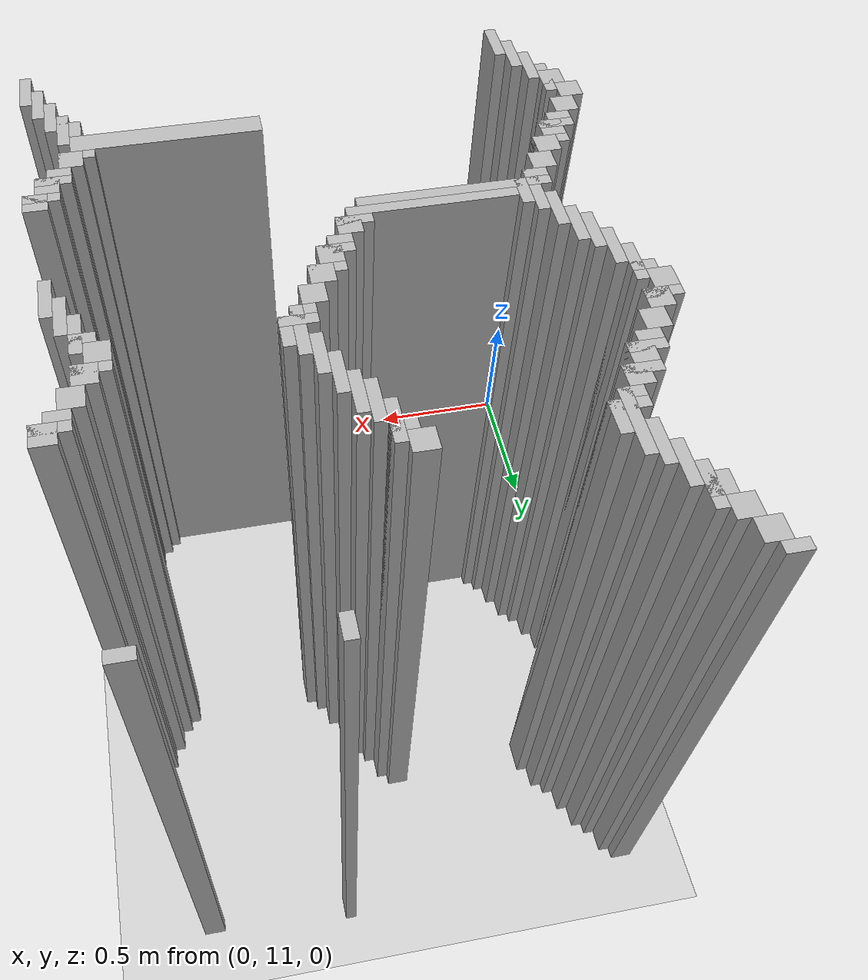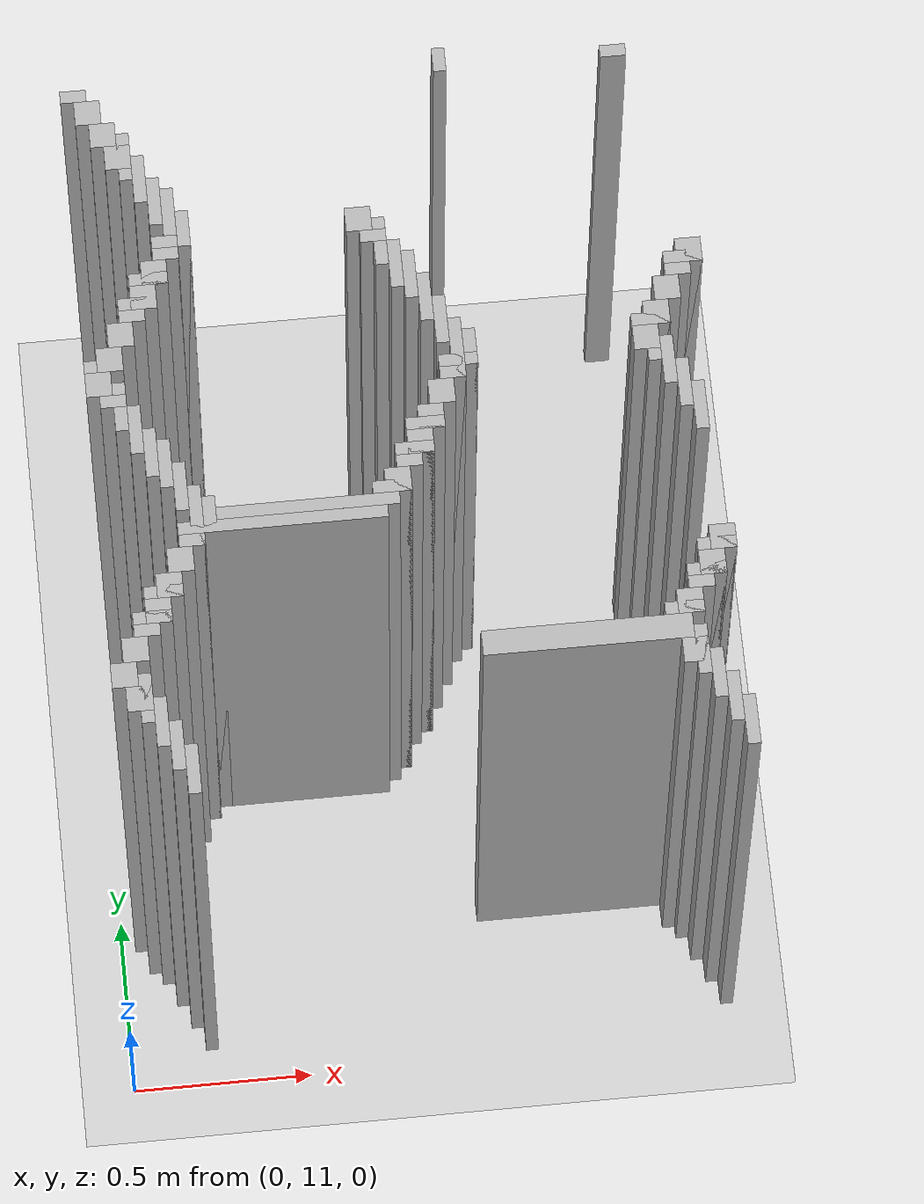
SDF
<sdf version="1.6">
 <world name="slam_world">
  <model name="ground_plane">
   <static>true</static>
   <link name="link">
    <collision name="collision">
     <geometry><plane><normal>0 0 1</normal><size>100 100</size></plane></geometry>
    </collision>
    <visual name="visual">
     <geometry><plane><normal>0 0 1</normal><size>100 100</size></plane></geometry>
     <material>
      <ambient>0.8 0.8 0.8 1</ambient>
      <diffuse>0.8 0.8 0.8 1</diffuse>
      <specular>0.8 0.8 0.8 1</specular>
     </material>
    </visual>
   </link>
  </model>
  <model name="wall_1403">
   <static>true</static>
   <pose>1.0614849187935034 13.155452436194896 1.0 0 0 0</pose>
   <link name="link">
    <collision name="collision">
     <geometry><box><size>0.03480278422273782 0.06960556844547564 2.0</size></box></geometry>
    </collision>
    <visual name="visual">
     <geometry><box><size>0.03480278422273782 0.06960556844547564 2.0</size></box></geometry>
     <material><ambient>0.5 0.5 0.5 1</ambient><diffuse>0.7 0.7 0.7 1</diffuse></material>
    </visual>
   </link>
  </model>
  <model name="wall_1419">
   <static>true</static>
   <pose>0.06960556844547564 13.138051044083527 1.0 0 0 0</pose>
   <link name="link">
    <collision name="collision">
     <geometry><box><size>0.06960556844547564 0.03480278422273782 2.0</size></box></geometry>
    </collision>
    <visual name="visual">
     <geometry><box><size>0.06960556844547564 0.03480278422273782 2.0</size></box></geometry>
     <material><ambient>0.5 0.5 0.5 1</ambient><diffuse>0.7 0.7 0.7 1</diffuse></material>
    </visual>
   </link>
  </model>
  <model name="wall_1420">
   <static>true</static>
   <pose>1.531322505800464 13.138051044083527 1.0 0 0 0</pose>
   <link name="link">
    <collision name="collision">
     <geometry><box><size>0.06960556844547564 0.03480278422273782 2.0</size></box></geometry>
    </collision>
    <visual name="visual">
     <geometry><box><size>0.06960556844547564 0.03480278422273782 2.0</size></box></geometry>
     <material><ambient>0.5 0.5 0.5 1</ambient><diffuse>0.7 0.7 0.7 1</diffuse></material>
    </visual>
   </link>
  </model>
  <model name="wall_1426">
   <static>true</static>
   <pose>0.10440835266821345 13.085846867749419 1.0 0 0 0</pose>
   <link name="link">
    <collision name="collision">
     <geometry><box><size>0.06960556844547564 0.06960556844547564 2.0</size></box></geometry>
    </collision>
    <visual name="visual">
     <geometry><box><size>0.06960556844547564 0.06960556844547564 2.0</size></box></geometry>
     <material><ambient>0.5 0.5 0.5 1</ambient><diffuse>0.7 0.7 0.7 1</diffuse></material>
    </visual>
   </link>
  </model>
  <model name="wall_1448">
   <static>true</static>
   <pose>0.13921113689095127 13.016241299303944 1.0 0 0 0</pose>
   <link name="link">
    <collision name="collision">
     <geometry><box><size>0.06960556844547564 0.06960556844547564 2.0</size></box></geometry>
    </collision>
    <visual name="visual">
     <geometry><box><size>0.06960556844547564 0.06960556844547564 2.0</size></box></geometry>
     <material><ambient>0.5 0.5 0.5 1</ambient><diffuse>0.7 0.7 0.7 1</diffuse></material>
    </visual>
   </link>
  </model>
  <model name="wall_1464">
   <static>true</static>
   <pose>0.191415313225058 12.946635730858468 1.0 0 0 0</pose>
   <link name="link">
    <collision name="collision">
     <geometry><box><size>0.03480278422273782 0.13921113689095127 2.0</size></box></geometry>
    </collision>
    <visual name="visual">
     <geometry><box><size>0.03480278422273782 0.13921113689095127 2.0</size></box></geometry>
     <material><ambient>0.5 0.5 0.5 1</ambient><diffuse>0.7 0.7 0.7 1</diffuse></material>
    </visual>
   </link>
  </model>
  <model name="wall_1480">
   <static>true</static>
   <pose>0.17401392111368907 12.946635730858468 1.0 0 0 0</pose>
   <link name="link">
    <collision name="collision">
     <geometry><box><size>0.06960556844547564 0.06960556844547564 2.0</size></box></geometry>
    </collision>
    <visual name="visual">
     <geometry><box><size>0.06960556844547564 0.06960556844547564 2.0</size></box></geometry>
     <material><ambient>0.5 0.5 0.5 1</ambient><diffuse>0.7 0.7 0.7 1</diffuse></material>
    </visual>
   </link>
  </model>
  <model name="wall_1496">
   <static>true</static>
   <pose>0.2262180974477958 12.877030162412993 1.0 0 0 0</pose>
   <link name="link">
    <collision name="collision">
     <geometry><box><size>0.03480278422273782 0.13921113689095127 2.0</size></box></geometry>
    </collision>
    <visual name="visual">
     <geometry><box><size>0.03480278422273782 0.13921113689095127 2.0</size></box></geometry>
     <material><ambient>0.5 0.5 0.5 1</ambient><diffuse>0.7 0.7 0.7 1</diffuse></material>
    </visual>
   </link>
  </model>
  <model name="wall_1521">
   <static>true</static>
   <pose>0.2610208816705336 12.807424593967516 1.0 0 0 0</pose>
   <link name="link">
    <collision name="collision">
     <geometry><box><size>0.03480278422273782 0.13921113689095127 2.0</size></box></geometry>
    </collision>
    <visual name="visual">
     <geometry><box><size>0.03480278422273782 0.13921113689095127 2.0</size></box></geometry>
     <material><ambient>0.5 0.5 0.5 1</ambient><diffuse>0.7 0.7 0.7 1</diffuse></material>
    </visual>
   </link>
  </model>
  <model name="wall_1537">
   <static>true</static>
   <pose>0.29582366589327147 12.737819025522041 1.0 0 0 0</pose>
   <link name="link">
    <collision name="collision">
     <geometry><box><size>0.03480278422273782 0.2088167053364269 2.0</size></box></geometry>
    </collision>
    <visual name="visual">
     <geometry><box><size>0.03480278422273782 0.2088167053364269 2.0</size></box></geometry>
     <material><ambient>0.5 0.5 0.5 1</ambient><diffuse>0.7 0.7 0.7 1</diffuse></material>
    </visual>
   </link>
  </model>
  <model name="wall_1562">
   <static>true</static>
   <pose>0.3306264501160093 12.720417633410673 1.0 0 0 0</pose>
   <link name="link">
    <collision name="collision">
     <geometry><box><size>0.03480278422273782 0.10440835266821345 2.0</size></box></geometry>
    </collision>
    <visual name="visual">
     <geometry><box><size>0.03480278422273782 0.10440835266821345 2.0</size></box></geometry>
     <material><ambient>0.5 0.5 0.5 1</ambient><diffuse>0.7 0.7 0.7 1</diffuse></material>
    </visual>
   </link>
  </model>
  <model name="wall_1575">
   <static>true</static>
   <pose>0.8004640371229698 12.703016241299304 1.0 0 0 0</pose>
   <link name="link">
    <collision name="collision">
     <geometry><box><size>0.06960556844547564 0.06960556844547564 2.0</size></box></geometry>
    </collision>
    <visual name="visual">
     <geometry><box><size>0.06960556844547564 0.06960556844547564 2.0</size></box></geometry>
     <material><ambient>0.5 0.5 0.5 1</ambient><diffuse>0.7 0.7 0.7 1</diffuse></material>
    </visual>
   </link>
  </model>
  <model name="wall_1585">
   <static>true</static>
   <pose>0.29582366589327147 12.685614849187935 1.0 0 0 0</pose>
   <link name="link">
    <collision name="collision">
     <geometry><box><size>0.10440835266821345 0.03480278422273782 2.0</size></box></geometry>
    </collision>
    <visual name="visual">
     <geometry><box><size>0.10440835266821345 0.03480278422273782 2.0</size></box></geometry>
     <material><ambient>0.5 0.5 0.5 1</ambient><diffuse>0.7 0.7 0.7 1</diffuse></material>
    </visual>
   </link>
  </model>
  <model name="wall_1586">
   <static>true</static>
   <pose>0.8526682134570766 12.633410672853827 1.0 0 0 0</pose>
   <link name="link">
    <collision name="collision">
     <geometry><box><size>0.03480278422273782 0.13921113689095127 2.0</size></box></geometry>
    </collision>
    <visual name="visual">
     <geometry><box><size>0.03480278422273782 0.13921113689095127 2.0</size></box></geometry>
     <material><ambient>0.5 0.5 0.5 1</ambient><diffuse>0.7 0.7 0.7 1</diffuse></material>
    </visual>
   </link>
  </model>
  <model name="wall_1598">
   <static>true</static>
   <pose>0.27842227378190254 12.650812064965196 1.0 0 0 0</pose>
   <link name="link">
    <collision name="collision">
     <geometry><box><size>0.06960556844547564 0.03480278422273782 2.0</size></box></geometry>
    </collision>
    <visual name="visual">
     <geometry><box><size>0.06960556844547564 0.03480278422273782 2.0</size></box></geometry>
     <material><ambient>0.5 0.5 0.5 1</ambient><diffuse>0.7 0.7 0.7 1</diffuse></material>
    </visual>
   </link>
  </model>
  <model name="wall_1599">
   <static>true</static>
   <pose>0.8352668213457076 12.650812064965196 1.0 0 0 0</pose>
   <link name="link">
    <collision name="collision">
     <geometry><box><size>0.06960556844547564 0.03480278422273782 2.0</size></box></geometry>
    </collision>
    <visual name="visual">
     <geometry><box><size>0.06960556844547564 0.03480278422273782 2.0</size></box></geometry>
     <material><ambient>0.5 0.5 0.5 1</ambient><diffuse>0.7 0.7 0.7 1</diffuse></material>
    </visual>
   </link>
  </model>
  <model name="wall_1609">
   <static>true</static>
   <pose>0.24361948955916474 12.59860788863109 1.0 0 0 0</pose>
   <link name="link">
    <collision name="collision">
     <geometry><box><size>0.06960556844547564 0.06960556844547564 2.0</size></box></geometry>
    </collision>
    <visual name="visual">
     <geometry><box><size>0.06960556844547564 0.06960556844547564 2.0</size></box></geometry>
     <material><ambient>0.5 0.5 0.5 1</ambient><diffuse>0.7 0.7 0.7 1</diffuse></material>
    </visual>
   </link>
  </model>
  <model name="wall_1610">
   <static>true</static>
   <pose>0.8874709976798143 12.563805104408353 1.0 0 0 0</pose>
   <link name="link">
    <collision name="collision">
     <geometry><box><size>0.03480278422273782 0.13921113689095127 2.0</size></box></geometry>
    </collision>
    <visual name="visual">
     <geometry><box><size>0.03480278422273782 0.13921113689095127 2.0</size></box></geometry>
     <material><ambient>0.5 0.5 0.5 1</ambient><diffuse>0.7 0.7 0.7 1</diffuse></material>
    </visual>
   </link>
  </model>
  <model name="wall_1622">
   <static>true</static>
   <pose>0.2262180974477958 12.581206496519721 1.0 0 0 0</pose>
   <link name="link">
    <collision name="collision">
     <geometry><box><size>0.10440835266821345 0.03480278422273782 2.0</size></box></geometry>
    </collision>
    <visual name="visual">
     <geometry><box><size>0.10440835266821345 0.03480278422273782 2.0</size></box></geometry>
     <material><ambient>0.5 0.5 0.5 1</ambient><diffuse>0.7 0.7 0.7 1</diffuse></material>
    </visual>
   </link>
  </model>
  <model name="wall_1623">
   <static>true</static>
   <pose>0.9222737819025522 12.529002320185615 1.0 0 0 0</pose>
   <link name="link">
    <collision name="collision">
     <geometry><box><size>0.03480278422273782 0.13921113689095127 2.0</size></box></geometry>
    </collision>
    <visual name="visual">
     <geometry><box><size>0.03480278422273782 0.13921113689095127 2.0</size></box></geometry>
     <material><ambient>0.5 0.5 0.5 1</ambient><diffuse>0.7 0.7 0.7 1</diffuse></material>
    </visual>
   </link>
  </model>
  <model name="wall_1635">
   <static>true</static>
   <pose>0.2088167053364269 12.529002320185615 1.0 0 0 0</pose>
   <link name="link">
    <collision name="collision">
     <geometry><box><size>0.06960556844547564 0.06960556844547564 2.0</size></box></geometry>
    </collision>
    <visual name="visual">
     <geometry><box><size>0.06960556844547564 0.06960556844547564 2.0</size></box></geometry>
     <material><ambient>0.5 0.5 0.5 1</ambient><diffuse>0.7 0.7 0.7 1</diffuse></material>
    </visual>
   </link>
  </model>
  <model name="wall_1636">
   <static>true</static>
   <pose>1.6705336426914152 12.529002320185615 1.0 0 0 0</pose>
   <link name="link">
    <collision name="collision">
     <geometry><box><size>0.06960556844547564 0.06960556844547564 2.0</size></box></geometry>
    </collision>
    <visual name="visual">
     <geometry><box><size>0.06960556844547564 0.06960556844547564 2.0</size></box></geometry>
     <material><ambient>0.5 0.5 0.5 1</ambient><diffuse>0.7 0.7 0.7 1</diffuse></material>
    </visual>
   </link>
  </model>
  <model name="wall_1646">
   <static>true</static>
   <pose>0.191415313225058 12.511600928074245 1.0 0 0 0</pose>
   <link name="link">
    <collision name="collision">
     <geometry><box><size>0.10440835266821345 0.03480278422273782 2.0</size></box></geometry>
    </collision>
    <visual name="visual">
     <geometry><box><size>0.10440835266821345 0.03480278422273782 2.0</size></box></geometry>
     <material><ambient>0.5 0.5 0.5 1</ambient><diffuse>0.7 0.7 0.7 1</diffuse></material>
    </visual>
   </link>
  </model>
  <model name="wall_1647">
   <static>true</static>
   <pose>0.95707656612529 12.459396751740138 1.0 0 0 0</pose>
   <link name="link">
    <collision name="collision">
     <geometry><box><size>0.03480278422273782 0.13921113689095127 2.0</size></box></geometry>
    </collision>
    <visual name="visual">
     <geometry><box><size>0.03480278422273782 0.13921113689095127 2.0</size></box></geometry>
     <material><ambient>0.5 0.5 0.5 1</ambient><diffuse>0.7 0.7 0.7 1</diffuse></material>
    </visual>
   </link>
  </model>
  <model name="wall_1648">
   <static>true</static>
   <pose>1.6531322505800463 12.511600928074245 1.0 0 0 0</pose>
   <link name="link">
    <collision name="collision">
     <geometry><box><size>0.10440835266821345 0.03480278422273782 2.0</size></box></geometry>
    </collision>
    <visual name="visual">
     <geometry><box><size>0.10440835266821345 0.03480278422273782 2.0</size></box></geometry>
     <material><ambient>0.5 0.5 0.5 1</ambient><diffuse>0.7 0.7 0.7 1</diffuse></material>
    </visual>
   </link>
  </model>
  <model name="wall_1659">
   <static>true</static>
   <pose>0.17401392111368907 12.476798143851507 1.0 0 0 0</pose>
   <link name="link">
    <collision name="collision">
     <geometry><box><size>0.06960556844547564 0.03480278422273782 2.0</size></box></geometry>
    </collision>
    <visual name="visual">
     <geometry><box><size>0.06960556844547564 0.03480278422273782 2.0</size></box></geometry>
     <material><ambient>0.5 0.5 0.5 1</ambient><diffuse>0.7 0.7 0.7 1</diffuse></material>
    </visual>
   </link>
  </model>
  <model name="wall_1660">
   <static>true</static>
   <pose>1.6357308584686774 12.476798143851507 1.0 0 0 0</pose>
   <link name="link">
    <collision name="collision">
     <geometry><box><size>0.06960556844547564 0.03480278422273782 2.0</size></box></geometry>
    </collision>
    <visual name="visual">
     <geometry><box><size>0.06960556844547564 0.03480278422273782 2.0</size></box></geometry>
     <material><ambient>0.5 0.5 0.5 1</ambient><diffuse>0.7 0.7 0.7 1</diffuse></material>
    </visual>
   </link>
  </model>
  <model name="wall_1667">
   <static>true</static>
   <pose>0.13921113689095127 12.424593967517401 1.0 0 0 0</pose>
   <link name="link">
    <collision name="collision">
     <geometry><box><size>0.06960556844547564 0.06960556844547564 2.0</size></box></geometry>
    </collision>
    <visual name="visual">
     <geometry><box><size>0.06960556844547564 0.06960556844547564 2.0</size></box></geometry>
     <material><ambient>0.5 0.5 0.5 1</ambient><diffuse>0.7 0.7 0.7 1</diffuse></material>
    </visual>
   </link>
  </model>
  <model name="wall_1668">
   <static>true</static>
   <pose>0.9918793503480278 12.389791183294664 1.0 0 0 0</pose>
   <link name="link">
    <collision name="collision">
     <geometry><box><size>0.03480278422273782 0.13921113689095127 2.0</size></box></geometry>
    </collision>
    <visual name="visual">
     <geometry><box><size>0.03480278422273782 0.13921113689095127 2.0</size></box></geometry>
     <material><ambient>0.5 0.5 0.5 1</ambient><diffuse>0.7 0.7 0.7 1</diffuse></material>
    </visual>
   </link>
  </model>
  <model name="wall_1669">
   <static>true</static>
   <pose>1.6009280742459395 12.424593967517401 1.0 0 0 0</pose>
   <link name="link">
    <collision name="collision">
     <geometry><box><size>0.06960556844547564 0.06960556844547564 2.0</size></box></geometry>
    </collision>
    <visual name="visual">
     <geometry><box><size>0.06960556844547564 0.06960556844547564 2.0</size></box></geometry>
     <material><ambient>0.5 0.5 0.5 1</ambient><diffuse>0.7 0.7 0.7 1</diffuse></material>
    </visual>
   </link>
  </model>
  <model name="wall_1680">
   <static>true</static>
   <pose>0.10440835266821345 12.354988399071924 1.0 0 0 0</pose>
   <link name="link">
    <collision name="collision">
     <geometry><box><size>0.06960556844547564 0.06960556844547564 2.0</size></box></geometry>
    </collision>
    <visual name="visual">
     <geometry><box><size>0.06960556844547564 0.06960556844547564 2.0</size></box></geometry>
     <material><ambient>0.5 0.5 0.5 1</ambient><diffuse>0.7 0.7 0.7 1</diffuse></material>
    </visual>
   </link>
  </model>
  <model name="wall_1681">
   <static>true</static>
   <pose>1.0266821345707655 12.302784222737818 1.0 0 0 0</pose>
   <link name="link">
    <collision name="collision">
     <geometry><box><size>0.03480278422273782 0.17401392111368907 2.0</size></box></geometry>
    </collision>
    <visual name="visual">
     <geometry><box><size>0.03480278422273782 0.17401392111368907 2.0</size></box></geometry>
     <material><ambient>0.5 0.5 0.5 1</ambient><diffuse>0.7 0.7 0.7 1</diffuse></material>
    </visual>
   </link>
  </model>
  <model name="wall_1682">
   <static>true</static>
   <pose>1.5661252900232019 12.354988399071924 1.0 0 0 0</pose>
   <link name="link">
    <collision name="collision">
     <geometry><box><size>0.06960556844547564 0.06960556844547564 2.0</size></box></geometry>
    </collision>
    <visual name="visual">
     <geometry><box><size>0.06960556844547564 0.06960556844547564 2.0</size></box></geometry>
     <material><ambient>0.5 0.5 0.5 1</ambient><diffuse>0.7 0.7 0.7 1</diffuse></material>
    </visual>
   </link>
  </model>
  <model name="wall_1693">
   <static>true</static>
   <pose>0.08700696055684454 12.337587006960556 1.0 0 0 0</pose>
   <link name="link">
    <collision name="collision">
     <geometry><box><size>0.10440835266821345 0.03480278422273782 2.0</size></box></geometry>
    </collision>
    <visual name="visual">
     <geometry><box><size>0.10440835266821345 0.03480278422273782 2.0</size></box></geometry>
     <material><ambient>0.5 0.5 0.5 1</ambient><diffuse>0.7 0.7 0.7 1</diffuse></material>
    </visual>
   </link>
  </model>
  <model name="wall_1694">
   <static>true</static>
   <pose>1.0614849187935034 12.302784222737818 1.0 0 0 0</pose>
   <link name="link">
    <collision name="collision">
     <geometry><box><size>0.03480278422273782 0.10440835266821345 2.0</size></box></geometry>
    </collision>
    <visual name="visual">
     <geometry><box><size>0.03480278422273782 0.10440835266821345 2.0</size></box></geometry>
     <material><ambient>0.5 0.5 0.5 1</ambient><diffuse>0.7 0.7 0.7 1</diffuse></material>
    </visual>
   </link>
  </model>
  <model name="wall_1695">
   <static>true</static>
   <pose>1.548723897911833 12.337587006960556 1.0 0 0 0</pose>
   <link name="link">
    <collision name="collision">
     <geometry><box><size>0.10440835266821345 0.03480278422273782 2.0</size></box></geometry>
    </collision>
    <visual name="visual">
     <geometry><box><size>0.10440835266821345 0.03480278422273782 2.0</size></box></geometry>
     <material><ambient>0.5 0.5 0.5 1</ambient><diffuse>0.7 0.7 0.7 1</diffuse></material>
    </visual>
   </link>
  </model>
  <model name="wall_1705">
   <static>true</static>
   <pose>0.06960556844547564 12.28538283062645 1.0 0 0 0</pose>
   <link name="link">
    <collision name="collision">
     <geometry><box><size>0.06960556844547564 0.06960556844547564 2.0</size></box></geometry>
    </collision>
    <visual name="visual">
     <geometry><box><size>0.06960556844547564 0.06960556844547564 2.0</size></box></geometry>
     <material><ambient>0.5 0.5 0.5 1</ambient><diffuse>0.7 0.7 0.7 1</diffuse></material>
    </visual>
   </link>
  </model>
  <model name="wall_1706">
   <static>true</static>
   <pose>1.531322505800464 12.28538283062645 1.0 0 0 0</pose>
   <link name="link">
    <collision name="collision">
     <geometry><box><size>0.06960556844547564 0.06960556844547564 2.0</size></box></geometry>
    </collision>
    <visual name="visual">
     <geometry><box><size>0.06960556844547564 0.06960556844547564 2.0</size></box></geometry>
     <material><ambient>0.5 0.5 0.5 1</ambient><diffuse>0.7 0.7 0.7 1</diffuse></material>
    </visual>
   </link>
  </model>
  <model name="wall_1717">
   <static>true</static>
   <pose>0.12180974477958237 12.215777262180975 1.0 0 0 0</pose>
   <link name="link">
    <collision name="collision">
     <geometry><box><size>0.03480278422273782 0.13921113689095127 2.0</size></box></geometry>
    </collision>
    <visual name="visual">
     <geometry><box><size>0.03480278422273782 0.13921113689095127 2.0</size></box></geometry>
     <material><ambient>0.5 0.5 0.5 1</ambient><diffuse>0.7 0.7 0.7 1</diffuse></material>
    </visual>
   </link>
  </model>
  <model name="wall_1718">
   <static>true</static>
   <pose>1.0266821345707655 12.267981438515081 1.0 0 0 0</pose>
   <link name="link">
    <collision name="collision">
     <geometry><box><size>0.10440835266821345 0.03480278422273782 2.0</size></box></geometry>
    </collision>
    <visual name="visual">
     <geometry><box><size>0.10440835266821345 0.03480278422273782 2.0</size></box></geometry>
     <material><ambient>0.5 0.5 0.5 1</ambient><diffuse>0.7 0.7 0.7 1</diffuse></material>
    </visual>
   </link>
  </model>
  <model name="wall_1719">
   <static>true</static>
   <pose>1.5835266821345706 12.215777262180975 1.0 0 0 0</pose>
   <link name="link">
    <collision name="collision">
     <geometry><box><size>0.03480278422273782 0.13921113689095127 2.0</size></box></geometry>
    </collision>
    <visual name="visual">
     <geometry><box><size>0.03480278422273782 0.13921113689095127 2.0</size></box></geometry>
     <material><ambient>0.5 0.5 0.5 1</ambient><diffuse>0.7 0.7 0.7 1</diffuse></material>
    </visual>
   </link>
  </model>
  <model name="wall_1736">
   <static>true</static>
   <pose>0.10440835266821345 12.233178654292344 1.0 0 0 0</pose>
   <link name="link">
    <collision name="collision">
     <geometry><box><size>0.06960556844547564 0.03480278422273782 2.0</size></box></geometry>
    </collision>
    <visual name="visual">
     <geometry><box><size>0.06960556844547564 0.03480278422273782 2.0</size></box></geometry>
     <material><ambient>0.5 0.5 0.5 1</ambient><diffuse>0.7 0.7 0.7 1</diffuse></material>
    </visual>
   </link>
  </model>
  <model name="wall_1737">
   <static>true</static>
   <pose>1.0092807424593968 12.233178654292344 1.0 0 0 0</pose>
   <link name="link">
    <collision name="collision">
     <geometry><box><size>0.06960556844547564 0.03480278422273782 2.0</size></box></geometry>
    </collision>
    <visual name="visual">
     <geometry><box><size>0.06960556844547564 0.03480278422273782 2.0</size></box></geometry>
     <material><ambient>0.5 0.5 0.5 1</ambient><diffuse>0.7 0.7 0.7 1</diffuse></material>
    </visual>
   </link>
  </model>
  <model name="wall_1738">
   <static>true</static>
   <pose>1.5661252900232019 12.233178654292344 1.0 0 0 0</pose>
   <link name="link">
    <collision name="collision">
     <geometry><box><size>0.06960556844547564 0.03480278422273782 2.0</size></box></geometry>
    </collision>
    <visual name="visual">
     <geometry><box><size>0.06960556844547564 0.03480278422273782 2.0</size></box></geometry>
     <material><ambient>0.5 0.5 0.5 1</ambient><diffuse>0.7 0.7 0.7 1</diffuse></material>
    </visual>
   </link>
  </model>
  <model name="wall_1752">
   <static>true</static>
   <pose>0.15661252900232017 12.146171693735498 1.0 0 0 0</pose>
   <link name="link">
    <collision name="collision">
     <geometry><box><size>0.03480278422273782 0.13921113689095127 2.0</size></box></geometry>
    </collision>
    <visual name="visual">
     <geometry><box><size>0.03480278422273782 0.13921113689095127 2.0</size></box></geometry>
     <material><ambient>0.5 0.5 0.5 1</ambient><diffuse>0.7 0.7 0.7 1</diffuse></material>
    </visual>
   </link>
  </model>
  <model name="wall_1753">
   <static>true</static>
   <pose>0.974477958236659 12.180974477958236 1.0 0 0 0</pose>
   <link name="link">
    <collision name="collision">
     <geometry><box><size>0.06960556844547564 0.06960556844547564 2.0</size></box></geometry>
    </collision>
    <visual name="visual">
     <geometry><box><size>0.06960556844547564 0.06960556844547564 2.0</size></box></geometry>
     <material><ambient>0.5 0.5 0.5 1</ambient><diffuse>0.7 0.7 0.7 1</diffuse></material>
    </visual>
   </link>
  </model>
  <model name="wall_1754">
   <static>true</static>
   <pose>1.6183294663573085 12.146171693735498 1.0 0 0 0</pose>
   <link name="link">
    <collision name="collision">
     <geometry><box><size>0.03480278422273782 0.13921113689095127 2.0</size></box></geometry>
    </collision>
    <visual name="visual">
     <geometry><box><size>0.03480278422273782 0.13921113689095127 2.0</size></box></geometry>
     <material><ambient>0.5 0.5 0.5 1</ambient><diffuse>0.7 0.7 0.7 1</diffuse></material>
    </visual>
   </link>
  </model>
  <model name="wall_1768">
   <static>true</static>
   <pose>0.191415313225058 12.076566125290023 1.0 0 0 0</pose>
   <link name="link">
    <collision name="collision">
     <geometry><box><size>0.03480278422273782 0.13921113689095127 2.0</size></box></geometry>
    </collision>
    <visual name="visual">
     <geometry><box><size>0.03480278422273782 0.13921113689095127 2.0</size></box></geometry>
     <material><ambient>0.5 0.5 0.5 1</ambient><diffuse>0.7 0.7 0.7 1</diffuse></material>
    </visual>
   </link>
  </model>
  <model name="wall_1769">
   <static>true</static>
   <pose>0.9396751740139211 12.11136890951276 1.0 0 0 0</pose>
   <link name="link">
    <collision name="collision">
     <geometry><box><size>0.06960556844547564 0.06960556844547564 2.0</size></box></geometry>
    </collision>
    <visual name="visual">
     <geometry><box><size>0.06960556844547564 0.06960556844547564 2.0</size></box></geometry>
     <material><ambient>0.5 0.5 0.5 1</ambient><diffuse>0.7 0.7 0.7 1</diffuse></material>
    </visual>
   </link>
  </model>
  <model name="wall_1770">
   <static>true</static>
   <pose>1.6531322505800463 12.076566125290023 1.0 0 0 0</pose>
   <link name="link">
    <collision name="collision">
     <geometry><box><size>0.03480278422273782 0.13921113689095127 2.0</size></box></geometry>
    </collision>
    <visual name="visual">
     <geometry><box><size>0.03480278422273782 0.13921113689095127 2.0</size></box></geometry>
     <material><ambient>0.5 0.5 0.5 1</ambient><diffuse>0.7 0.7 0.7 1</diffuse></material>
    </visual>
   </link>
  </model>
  <model name="wall_1784">
   <static>true</static>
   <pose>0.2262180974477958 12.041763341067284 1.0 0 0 0</pose>
   <link name="link">
    <collision name="collision">
     <geometry><box><size>0.03480278422273782 0.13921113689095127 2.0</size></box></geometry>
    </collision>
    <visual name="visual">
     <geometry><box><size>0.03480278422273782 0.13921113689095127 2.0</size></box></geometry>
     <material><ambient>0.5 0.5 0.5 1</ambient><diffuse>0.7 0.7 0.7 1</diffuse></material>
    </visual>
   </link>
  </model>
  <model name="wall_1785">
   <static>true</static>
   <pose>0.9222737819025522 12.093967517401392 1.0 0 0 0</pose>
   <link name="link">
    <collision name="collision">
     <geometry><box><size>0.10440835266821345 0.03480278422273782 2.0</size></box></geometry>
    </collision>
    <visual name="visual">
     <geometry><box><size>0.10440835266821345 0.03480278422273782 2.0</size></box></geometry>
     <material><ambient>0.5 0.5 0.5 1</ambient><diffuse>0.7 0.7 0.7 1</diffuse></material>
    </visual>
   </link>
  </model>
  <model name="wall_1800">
   <static>true</static>
   <pose>0.9048723897911832 12.041763341067284 1.0 0 0 0</pose>
   <link name="link">
    <collision name="collision">
     <geometry><box><size>0.06960556844547564 0.06960556844547564 2.0</size></box></geometry>
    </collision>
    <visual name="visual">
     <geometry><box><size>0.06960556844547564 0.06960556844547564 2.0</size></box></geometry>
     <material><ambient>0.5 0.5 0.5 1</ambient><diffuse>0.7 0.7 0.7 1</diffuse></material>
    </visual>
   </link>
  </model>
  <model name="wall_1810">
   <static>true</static>
   <pose>0.2610208816705336 11.97215777262181 1.0 0 0 0</pose>
   <link name="link">
    <collision name="collision">
     <geometry><box><size>0.03480278422273782 0.13921113689095127 2.0</size></box></geometry>
    </collision>
    <visual name="visual">
     <geometry><box><size>0.03480278422273782 0.13921113689095127 2.0</size></box></geometry>
     <material><ambient>0.5 0.5 0.5 1</ambient><diffuse>0.7 0.7 0.7 1</diffuse></material>
    </visual>
   </link>
  </model>
  <model name="wall_1811">
   <static>true</static>
   <pose>0.8874709976798143 12.024361948955915 1.0 0 0 0</pose>
   <link name="link">
    <collision name="collision">
     <geometry><box><size>0.10440835266821345 0.03480278422273782 2.0</size></box></geometry>
    </collision>
    <visual name="visual">
     <geometry><box><size>0.10440835266821345 0.03480278422273782 2.0</size></box></geometry>
     <material><ambient>0.5 0.5 0.5 1</ambient><diffuse>0.7 0.7 0.7 1</diffuse></material>
    </visual>
   </link>
  </model>
  <model name="wall_1826">
   <static>true</static>
   <pose>0.8700696055684455 11.989559164733178 1.0 0 0 0</pose>
   <link name="link">
    <collision name="collision">
     <geometry><box><size>0.06960556844547564 0.03480278422273782 2.0</size></box></geometry>
    </collision>
    <visual name="visual">
     <geometry><box><size>0.06960556844547564 0.03480278422273782 2.0</size></box></geometry>
     <material><ambient>0.5 0.5 0.5 1</ambient><diffuse>0.7 0.7 0.7 1</diffuse></material>
    </visual>
   </link>
  </model>
  <model name="wall_1833">
   <static>true</static>
   <pose>0.29582366589327147 11.885150812064964 1.0 0 0 0</pose>
   <link name="link">
    <collision name="collision">
     <geometry><box><size>0.03480278422273782 0.17401392111368907 2.0</size></box></geometry>
    </collision>
    <visual name="visual">
     <geometry><box><size>0.03480278422273782 0.17401392111368907 2.0</size></box></geometry>
     <material><ambient>0.5 0.5 0.5 1</ambient><diffuse>0.7 0.7 0.7 1</diffuse></material>
    </visual>
   </link>
  </model>
  <model name="wall_1834">
   <static>true</static>
   <pose>0.8352668213457076 11.937354988399072 1.0 0 0 0</pose>
   <link name="link">
    <collision name="collision">
     <geometry><box><size>0.06960556844547564 0.06960556844547564 2.0</size></box></geometry>
    </collision>
    <visual name="visual">
     <geometry><box><size>0.06960556844547564 0.06960556844547564 2.0</size></box></geometry>
     <material><ambient>0.5 0.5 0.5 1</ambient><diffuse>0.7 0.7 0.7 1</diffuse></material>
    </visual>
   </link>
  </model>
  <model name="wall_1849">
   <static>true</static>
   <pose>0.3306264501160093 11.885150812064964 1.0 0 0 0</pose>
   <link name="link">
    <collision name="collision">
     <geometry><box><size>0.03480278422273782 0.10440835266821345 2.0</size></box></geometry>
    </collision>
    <visual name="visual">
     <geometry><box><size>0.03480278422273782 0.10440835266821345 2.0</size></box></geometry>
     <material><ambient>0.5 0.5 0.5 1</ambient><diffuse>0.7 0.7 0.7 1</diffuse></material>
    </visual>
   </link>
  </model>
  <model name="wall_1850">
   <static>true</static>
   <pose>0.8178654292343387 11.919953596287703 1.0 0 0 0</pose>
   <link name="link">
    <collision name="collision">
     <geometry><box><size>0.10440835266821345 0.03480278422273782 2.0</size></box></geometry>
    </collision>
    <visual name="visual">
     <geometry><box><size>0.10440835266821345 0.03480278422273782 2.0</size></box></geometry>
     <material><ambient>0.5 0.5 0.5 1</ambient><diffuse>0.7 0.7 0.7 1</diffuse></material>
    </visual>
   </link>
  </model>
  <model name="wall_1865">
   <static>true</static>
   <pose>0.5916473317865429 11.885150812064964 1.0 0 0 0</pose>
   <link name="link">
    <collision name="collision">
     <geometry><box><size>0.4872389791183295 0.03480278422273782 2.0</size></box></geometry>
    </collision>
    <visual name="visual">
     <geometry><box><size>0.4872389791183295 0.03480278422273782 2.0</size></box></geometry>
     <material><ambient>0.5 0.5 0.5 1</ambient><diffuse>0.7 0.7 0.7 1</diffuse></material>
    </visual>
   </link>
  </model>
  <model name="wall_1877">
   <static>true</static>
   <pose>0.5220417633410672 11.850348027842227 1.0 0 0 0</pose>
   <link name="link">
    <collision name="collision">
     <geometry><box><size>0.5568445475638051 0.03480278422273782 2.0</size></box></geometry>
    </collision>
    <visual name="visual">
     <geometry><box><size>0.5568445475638051 0.03480278422273782 2.0</size></box></geometry>
     <material><ambient>0.5 0.5 0.5 1</ambient><diffuse>0.7 0.7 0.7 1</diffuse></material>
    </visual>
   </link>
  </model>
  <model name="wall_1893">
   <static>true</static>
   <pose>0.27842227378190254 11.81554524361949 1.0 0 0 0</pose>
   <link name="link">
    <collision name="collision">
     <geometry><box><size>0.06960556844547564 0.03480278422273782 2.0</size></box></geometry>
    </collision>
    <visual name="visual">
     <geometry><box><size>0.06960556844547564 0.03480278422273782 2.0</size></box></geometry>
     <material><ambient>0.5 0.5 0.5 1</ambient><diffuse>0.7 0.7 0.7 1</diffuse></material>
    </visual>
   </link>
  </model>
  <model name="wall_1909">
   <static>true</static>
   <pose>0.24361948955916474 11.763341067285383 1.0 0 0 0</pose>
   <link name="link">
    <collision name="collision">
     <geometry><box><size>0.06960556844547564 0.06960556844547564 2.0</size></box></geometry>
    </collision>
    <visual name="visual">
     <geometry><box><size>0.06960556844547564 0.06960556844547564 2.0</size></box></geometry>
     <material><ambient>0.5 0.5 0.5 1</ambient><diffuse>0.7 0.7 0.7 1</diffuse></material>
    </visual>
   </link>
  </model>
  <model name="wall_1925">
   <static>true</static>
   <pose>0.2088167053364269 11.693735498839906 1.0 0 0 0</pose>
   <link name="link">
    <collision name="collision">
     <geometry><box><size>0.06960556844547564 0.06960556844547564 2.0</size></box></geometry>
    </collision>
    <visual name="visual">
     <geometry><box><size>0.06960556844547564 0.06960556844547564 2.0</size></box></geometry>
     <material><ambient>0.5 0.5 0.5 1</ambient><diffuse>0.7 0.7 0.7 1</diffuse></material>
    </visual>
   </link>
  </model>
  <model name="wall_1926">
   <static>true</static>
   <pose>1.6705336426914152 11.693735498839906 1.0 0 0 0</pose>
   <link name="link">
    <collision name="collision">
     <geometry><box><size>0.06960556844547564 0.06960556844547564 2.0</size></box></geometry>
    </collision>
    <visual name="visual">
     <geometry><box><size>0.06960556844547564 0.06960556844547564 2.0</size></box></geometry>
     <material><ambient>0.5 0.5 0.5 1</ambient><diffuse>0.7 0.7 0.7 1</diffuse></material>
    </visual>
   </link>
  </model>
  <model name="wall_1941">
   <static>true</static>
   <pose>0.191415313225058 11.676334106728538 1.0 0 0 0</pose>
   <link name="link">
    <collision name="collision">
     <geometry><box><size>0.10440835266821345 0.03480278422273782 2.0</size></box></geometry>
    </collision>
    <visual name="visual">
     <geometry><box><size>0.10440835266821345 0.03480278422273782 2.0</size></box></geometry>
     <material><ambient>0.5 0.5 0.5 1</ambient><diffuse>0.7 0.7 0.7 1</diffuse></material>
    </visual>
   </link>
  </model>
  <model name="wall_1942">
   <static>true</static>
   <pose>1.6531322505800463 11.676334106728538 1.0 0 0 0</pose>
   <link name="link">
    <collision name="collision">
     <geometry><box><size>0.10440835266821345 0.03480278422273782 2.0</size></box></geometry>
    </collision>
    <visual name="visual">
     <geometry><box><size>0.10440835266821345 0.03480278422273782 2.0</size></box></geometry>
     <material><ambient>0.5 0.5 0.5 1</ambient><diffuse>0.7 0.7 0.7 1</diffuse></material>
    </visual>
   </link>
  </model>
  <model name="wall_1957">
   <static>true</static>
   <pose>0.17401392111368907 11.624129930394432 1.0 0 0 0</pose>
   <link name="link">
    <collision name="collision">
     <geometry><box><size>0.06960556844547564 0.06960556844547564 2.0</size></box></geometry>
    </collision>
    <visual name="visual">
     <geometry><box><size>0.06960556844547564 0.06960556844547564 2.0</size></box></geometry>
     <material><ambient>0.5 0.5 0.5 1</ambient><diffuse>0.7 0.7 0.7 1</diffuse></material>
    </visual>
   </link>
  </model>
  <model name="wall_1958">
   <static>true</static>
   <pose>1.6357308584686774 11.624129930394432 1.0 0 0 0</pose>
   <link name="link">
    <collision name="collision">
     <geometry><box><size>0.06960556844547564 0.06960556844547564 2.0</size></box></geometry>
    </collision>
    <visual name="visual">
     <geometry><box><size>0.06960556844547564 0.06960556844547564 2.0</size></box></geometry>
     <material><ambient>0.5 0.5 0.5 1</ambient><diffuse>0.7 0.7 0.7 1</diffuse></material>
    </visual>
   </link>
  </model>
  <model name="wall_1966">
   <static>true</static>
   <pose>0.15661252900232017 11.606728538283063 1.0 0 0 0</pose>
   <link name="link">
    <collision name="collision">
     <geometry><box><size>0.10440835266821345 0.03480278422273782 2.0</size></box></geometry>
    </collision>
    <visual name="visual">
     <geometry><box><size>0.10440835266821345 0.03480278422273782 2.0</size></box></geometry>
     <material><ambient>0.5 0.5 0.5 1</ambient><diffuse>0.7 0.7 0.7 1</diffuse></material>
    </visual>
   </link>
  </model>
  <model name="wall_1967">
   <static>true</static>
   <pose>1.6183294663573085 11.606728538283063 1.0 0 0 0</pose>
   <link name="link">
    <collision name="collision">
     <geometry><box><size>0.10440835266821345 0.03480278422273782 2.0</size></box></geometry>
    </collision>
    <visual name="visual">
     <geometry><box><size>0.10440835266821345 0.03480278422273782 2.0</size></box></geometry>
     <material><ambient>0.5 0.5 0.5 1</ambient><diffuse>0.7 0.7 0.7 1</diffuse></material>
    </visual>
   </link>
  </model>
  <model name="wall_1982">
   <static>true</static>
   <pose>0.13921113689095127 11.571925754060324 1.0 0 0 0</pose>
   <link name="link">
    <collision name="collision">
     <geometry><box><size>0.06960556844547564 0.03480278422273782 2.0</size></box></geometry>
    </collision>
    <visual name="visual">
     <geometry><box><size>0.06960556844547564 0.03480278422273782 2.0</size></box></geometry>
     <material><ambient>0.5 0.5 0.5 1</ambient><diffuse>0.7 0.7 0.7 1</diffuse></material>
    </visual>
   </link>
  </model>
  <model name="wall_1983">
   <static>true</static>
   <pose>1.6009280742459395 11.571925754060324 1.0 0 0 0</pose>
   <link name="link">
    <collision name="collision">
     <geometry><box><size>0.06960556844547564 0.03480278422273782 2.0</size></box></geometry>
    </collision>
    <visual name="visual">
     <geometry><box><size>0.06960556844547564 0.03480278422273782 2.0</size></box></geometry>
     <material><ambient>0.5 0.5 0.5 1</ambient><diffuse>0.7 0.7 0.7 1</diffuse></material>
    </visual>
   </link>
  </model>
  <model name="wall_1991">
   <static>true</static>
   <pose>0.10440835266821345 11.519721577726218 1.0 0 0 0</pose>
   <link name="link">
    <collision name="collision">
     <geometry><box><size>0.06960556844547564 0.06960556844547564 2.0</size></box></geometry>
    </collision>
    <visual name="visual">
     <geometry><box><size>0.06960556844547564 0.06960556844547564 2.0</size></box></geometry>
     <material><ambient>0.5 0.5 0.5 1</ambient><diffuse>0.7 0.7 0.7 1</diffuse></material>
    </visual>
   </link>
  </model>
  <model name="wall_1992">
   <static>true</static>
   <pose>1.5661252900232019 11.519721577726218 1.0 0 0 0</pose>
   <link name="link">
    <collision name="collision">
     <geometry><box><size>0.06960556844547564 0.06960556844547564 2.0</size></box></geometry>
    </collision>
    <visual name="visual">
     <geometry><box><size>0.06960556844547564 0.06960556844547564 2.0</size></box></geometry>
     <material><ambient>0.5 0.5 0.5 1</ambient><diffuse>0.7 0.7 0.7 1</diffuse></material>
    </visual>
   </link>
  </model>
  <model name="wall_2007">
   <static>true</static>
   <pose>1.548723897911833 11.502320185614849 1.0 0 0 0</pose>
   <link name="link">
    <collision name="collision">
     <geometry><box><size>0.10440835266821345 0.03480278422273782 2.0</size></box></geometry>
    </collision>
    <visual name="visual">
     <geometry><box><size>0.10440835266821345 0.03480278422273782 2.0</size></box></geometry>
     <material><ambient>0.5 0.5 0.5 1</ambient><diffuse>0.7 0.7 0.7 1</diffuse></material>
    </visual>
   </link>
  </model>
  <model name="wall_2022">
   <static>true</static>
   <pose>0.06960556844547564 11.450116009280743 1.0 0 0 0</pose>
   <link name="link">
    <collision name="collision">
     <geometry><box><size>0.06960556844547564 0.06960556844547564 2.0</size></box></geometry>
    </collision>
    <visual name="visual">
     <geometry><box><size>0.06960556844547564 0.06960556844547564 2.0</size></box></geometry>
     <material><ambient>0.5 0.5 0.5 1</ambient><diffuse>0.7 0.7 0.7 1</diffuse></material>
    </visual>
   </link>
  </model>
  <model name="wall_2023">
   <static>true</static>
   <pose>1.2877030162412992 11.450116009280743 1.0 0 0 0</pose>
   <link name="link">
    <collision name="collision">
     <geometry><box><size>0.5568445475638051 0.06960556844547564 2.0</size></box></geometry>
    </collision>
    <visual name="visual">
     <geometry><box><size>0.5568445475638051 0.06960556844547564 2.0</size></box></geometry>
     <material><ambient>0.5 0.5 0.5 1</ambient><diffuse>0.7 0.7 0.7 1</diffuse></material>
    </visual>
   </link>
  </model>
  <model name="wall_2034">
   <static>true</static>
   <pose>0.12180974477958237 11.380510440835266 1.0 0 0 0</pose>
   <link name="link">
    <collision name="collision">
     <geometry><box><size>0.03480278422273782 0.13921113689095127 2.0</size></box></geometry>
    </collision>
    <visual name="visual">
     <geometry><box><size>0.03480278422273782 0.13921113689095127 2.0</size></box></geometry>
     <material><ambient>0.5 0.5 0.5 1</ambient><diffuse>0.7 0.7 0.7 1</diffuse></material>
    </visual>
   </link>
  </model>
  <model name="wall_2035">
   <static>true</static>
   <pose>1.5835266821345706 11.380510440835266 1.0 0 0 0</pose>
   <link name="link">
    <collision name="collision">
     <geometry><box><size>0.03480278422273782 0.13921113689095127 2.0</size></box></geometry>
    </collision>
    <visual name="visual">
     <geometry><box><size>0.03480278422273782 0.13921113689095127 2.0</size></box></geometry>
     <material><ambient>0.5 0.5 0.5 1</ambient><diffuse>0.7 0.7 0.7 1</diffuse></material>
    </visual>
   </link>
  </model>
  <model name="wall_2050">
   <static>true</static>
   <pose>0.10440835266821345 11.380510440835266 1.0 0 0 0</pose>
   <link name="link">
    <collision name="collision">
     <geometry><box><size>0.06960556844547564 0.06960556844547564 2.0</size></box></geometry>
    </collision>
    <visual name="visual">
     <geometry><box><size>0.06960556844547564 0.06960556844547564 2.0</size></box></geometry>
     <material><ambient>0.5 0.5 0.5 1</ambient><diffuse>0.7 0.7 0.7 1</diffuse></material>
    </visual>
   </link>
  </model>
  <model name="wall_2051">
   <static>true</static>
   <pose>1.5661252900232019 11.380510440835266 1.0 0 0 0</pose>
   <link name="link">
    <collision name="collision">
     <geometry><box><size>0.06960556844547564 0.06960556844547564 2.0</size></box></geometry>
    </collision>
    <visual name="visual">
     <geometry><box><size>0.06960556844547564 0.06960556844547564 2.0</size></box></geometry>
     <material><ambient>0.5 0.5 0.5 1</ambient><diffuse>0.7 0.7 0.7 1</diffuse></material>
    </visual>
   </link>
  </model>
  <model name="wall_2067">
   <static>true</static>
   <pose>0.15661252900232017 11.310904872389791 1.0 0 0 0</pose>
   <link name="link">
    <collision name="collision">
     <geometry><box><size>0.03480278422273782 0.13921113689095127 2.0</size></box></geometry>
    </collision>
    <visual name="visual">
     <geometry><box><size>0.03480278422273782 0.13921113689095127 2.0</size></box></geometry>
     <material><ambient>0.5 0.5 0.5 1</ambient><diffuse>0.7 0.7 0.7 1</diffuse></material>
    </visual>
   </link>
  </model>
  <model name="wall_2068">
   <static>true</static>
   <pose>1.6183294663573085 11.310904872389791 1.0 0 0 0</pose>
   <link name="link">
    <collision name="collision">
     <geometry><box><size>0.03480278422273782 0.13921113689095127 2.0</size></box></geometry>
    </collision>
    <visual name="visual">
     <geometry><box><size>0.03480278422273782 0.13921113689095127 2.0</size></box></geometry>
     <material><ambient>0.5 0.5 0.5 1</ambient><diffuse>0.7 0.7 0.7 1</diffuse></material>
    </visual>
   </link>
  </model>
  <model name="wall_2092">
   <static>true</static>
   <pose>0.191415313225058 11.241299303944315 1.0 0 0 0</pose>
   <link name="link">
    <collision name="collision">
     <geometry><box><size>0.03480278422273782 0.13921113689095127 2.0</size></box></geometry>
    </collision>
    <visual name="visual">
     <geometry><box><size>0.03480278422273782 0.13921113689095127 2.0</size></box></geometry>
     <material><ambient>0.5 0.5 0.5 1</ambient><diffuse>0.7 0.7 0.7 1</diffuse></material>
    </visual>
   </link>
  </model>
  <model name="wall_2093">
   <static>true</static>
   <pose>1.6531322505800463 11.241299303944315 1.0 0 0 0</pose>
   <link name="link">
    <collision name="collision">
     <geometry><box><size>0.03480278422273782 0.13921113689095127 2.0</size></box></geometry>
    </collision>
    <visual name="visual">
     <geometry><box><size>0.03480278422273782 0.13921113689095127 2.0</size></box></geometry>
     <material><ambient>0.5 0.5 0.5 1</ambient><diffuse>0.7 0.7 0.7 1</diffuse></material>
    </visual>
   </link>
  </model>
  <model name="wall_2109">
   <static>true</static>
   <pose>0.2262180974477958 11.17169373549884 1.0 0 0 0</pose>
   <link name="link">
    <collision name="collision">
     <geometry><box><size>0.03480278422273782 0.13921113689095127 2.0</size></box></geometry>
    </collision>
    <visual name="visual">
     <geometry><box><size>0.03480278422273782 0.13921113689095127 2.0</size></box></geometry>
     <material><ambient>0.5 0.5 0.5 1</ambient><diffuse>0.7 0.7 0.7 1</diffuse></material>
    </visual>
   </link>
  </model>
  <model name="wall_2110">
   <static>true</static>
   <pose>1.6879350348027842 11.17169373549884 1.0 0 0 0</pose>
   <link name="link">
    <collision name="collision">
     <geometry><box><size>0.03480278422273782 0.13921113689095127 2.0</size></box></geometry>
    </collision>
    <visual name="visual">
     <geometry><box><size>0.03480278422273782 0.13921113689095127 2.0</size></box></geometry>
     <material><ambient>0.5 0.5 0.5 1</ambient><diffuse>0.7 0.7 0.7 1</diffuse></material>
    </visual>
   </link>
  </model>
 </world>
</sdf>
